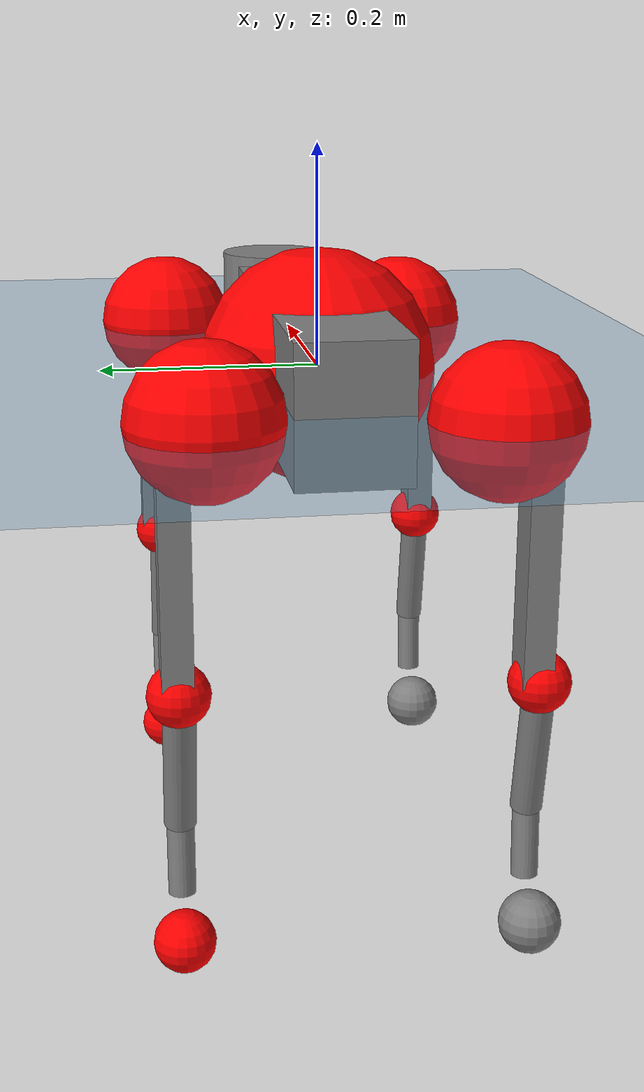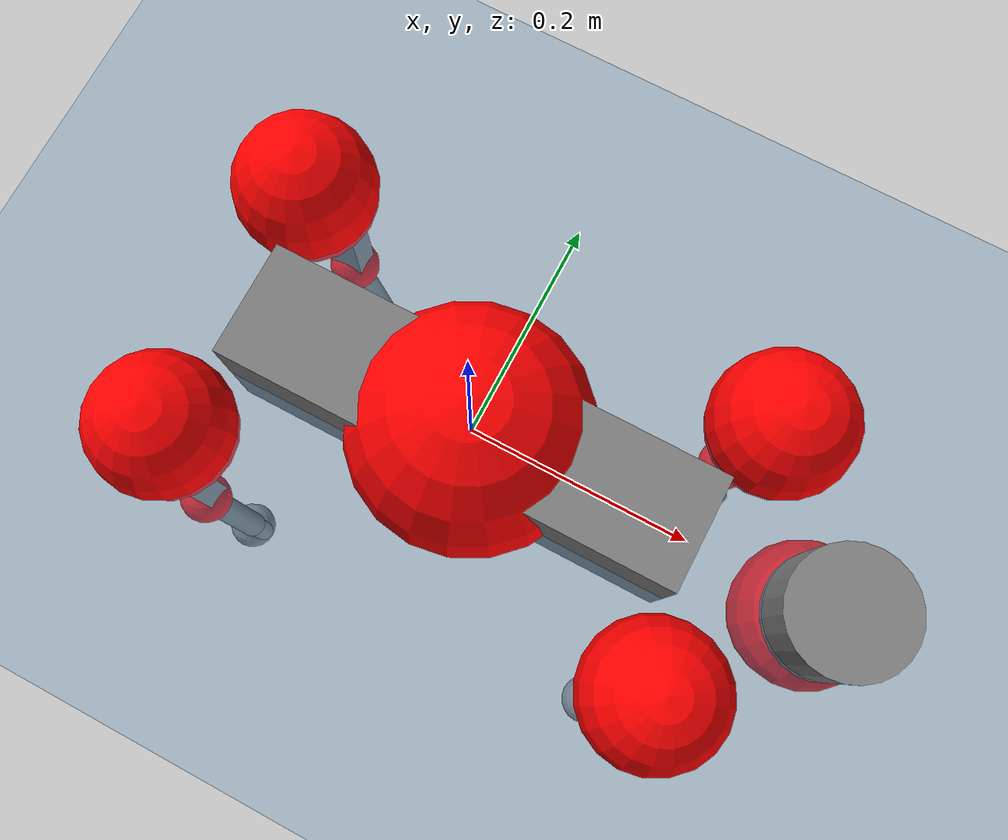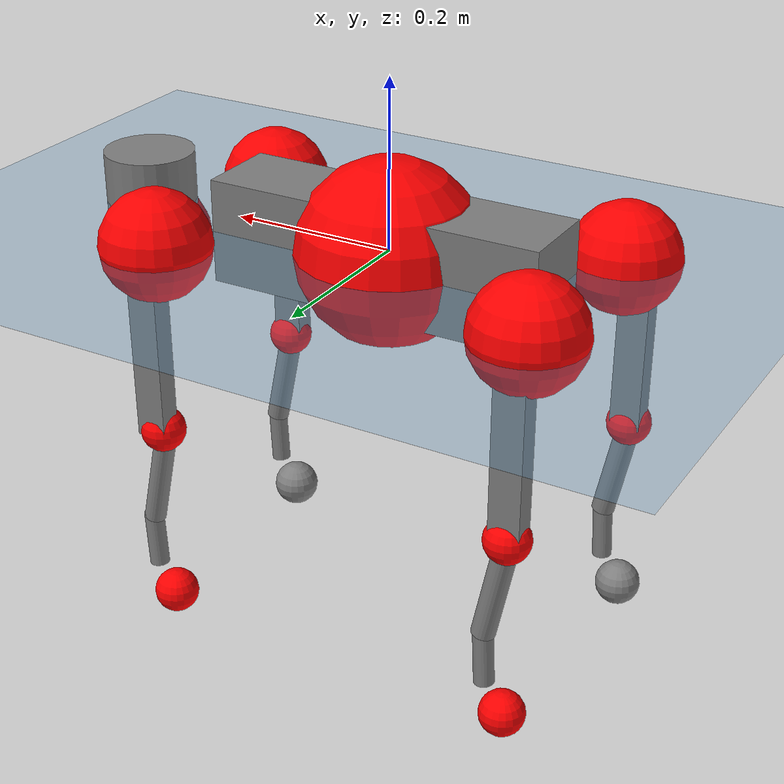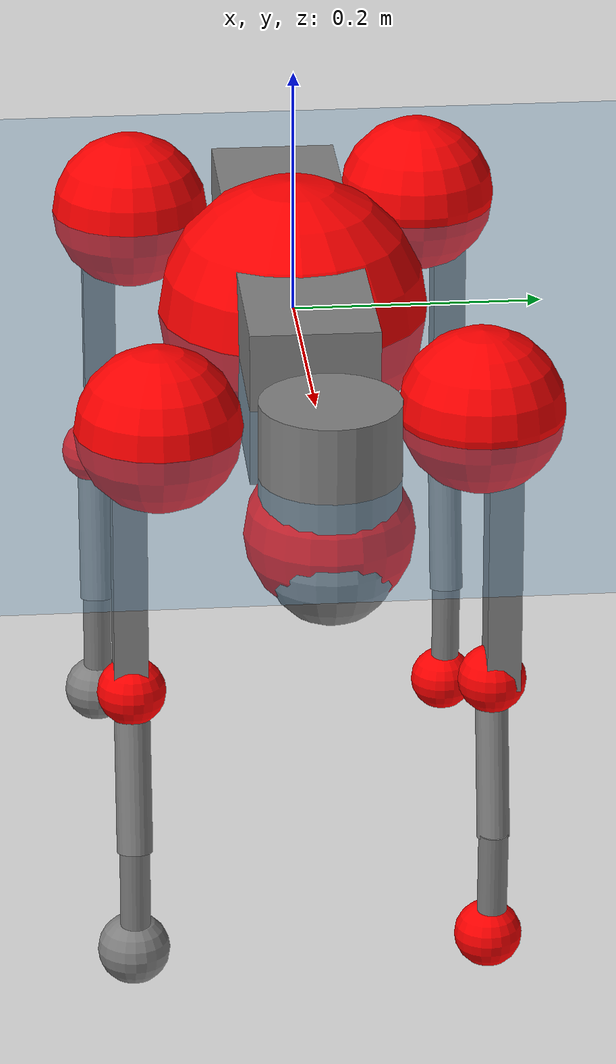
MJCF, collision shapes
<mujoco model="go2">
  <compiler angle="radian" assetdir="assets" balanceinertia="true" inertiafromgeom="false"/>

  <option timestep="0.005" density="1.2" viscosity="2e-05"/>

  <size nkey="1"/>

  <visual>
    <quality shadowsize="8192"/>
    <map shadowclip="0.5"/>
  </visual>

  <default>
    <default class="/">
      <geom contype="0" conaffinity="0" group="1" solref="-1000 -80"/>
      <site size="0.01 0.005 0.005" group="5"/>
      <general forcelimited="true" biastype="affine" gainprm="20" biasprm="0 -20 -0.5"/>
      <default class="go2">
        <joint armature="0.01" damping="0.01" frictionloss="0.2"/>
        <geom condim="1" margin="0.001"/>
        <default class="visual">
          <geom type="mesh" group="2"/>
        </default>
        <default class="collision">
          <geom group="3"/>
          <default class="foot">
            <geom size="0.022 0 0" condim="6" priority="1" friction="0.8 0.02 0.01" solimp="0.015 1 0.022"/>
          </default>
        </default>
        <default class="reward_collision_sphere">
          <geom group="5" rgba="1 0 0 1"/>
        </default>
      </default>
    </default>
  </default>

  <asset>
    <texture type="skybox" colorspace="auto" name="//unnamed_texture_0" builtin="gradient" rgb1="0.95 0.95 0.95" rgb2="0.95 0.95 0.95" width="100" height="600"/>
    <texture type="2d" colorspace="auto" name="texplane" builtin="checker" rgb1="0.345 0.575 0.748" rgb2="0.345 0.575 0.748" markrgb="1 1 1" width="512" height="512"/>
    <material name="MatPlane" class="/" texture="texplane" texuniform="true" texrepeat="2 2" specular="0.9"/>
    <material name="metal" class="/" rgba="0.9 0.95 0.95 1"/>
    <material name="black" class="/" rgba="0 0 0 1"/>
    <material name="white" class="/"/>
    <material name="gray" class="/" rgba="0.671705 0.692426 0.77427 1"/>
    <mesh name="base_0" class="/" file="base_0.obj"/>
    <mesh name="base_1" class="/" file="base_1.obj"/>
    <mesh name="base_2" class="/" file="base_2.obj"/>
    <mesh name="base_3" class="/" file="base_3.obj"/>
    <mesh name="base_4" class="/" file="base_4.obj"/>
    <mesh name="hip_0" class="/" file="hip_0.obj"/>
    <mesh name="hip_1" class="/" file="hip_1.obj"/>
    <mesh name="thigh_0" class="/" file="thigh_0.obj"/>
    <mesh name="thigh_1" class="/" file="thigh_1.obj"/>
    <mesh name="thigh_mirror_0" class="/" file="thigh_mirror_0.obj"/>
    <mesh name="thigh_mirror_1" class="/" file="thigh_mirror_1.obj"/>
    <mesh name="calf_0" class="/" file="calf_0.obj"/>
    <mesh name="calf_1" class="/" file="calf_1.obj"/>
    <mesh name="calf_mirror_0" class="/" file="calf_mirror_0.obj"/>
    <mesh name="calf_mirror_1" class="/" file="calf_mirror_1.obj"/>
    <mesh name="foot" class="/" file="foot.obj"/>
  </asset>

  <worldbody>
    <geom name="floor" class="/" size="100 100 0.125" type="plane" group="0" material="MatPlane"/>
    <light name="toplight_shadow" class="/" pos="0 0 5" dir="0.0990148 0.0990148 -0.990148" type="directional" ambient="0.04 0.04 0.04" diffuse="0.55 0.55 0.55" specular="0.12 0.12 0.12"/>
    <light name="toplight_fill" class="/" pos="0 0 5" dir="0.0990148 0.0990148 -0.990148" type="directional" castshadow="false" ambient="0.04 0.04 0.04" diffuse="0.3 0.3 0.3" specular="0.08 0.08 0.08"/>
    <body name="trunk" childclass="go2" pos="-0.000609431 -0.000299692 -0.000436161" quat="1 -0.000734327 0.000142854 0.000189168">
      <inertial pos="0.0341287 0.00668856 -0.00450292" quat="-0.00178585 0.716861 -0.00142292 0.697213" mass="8.16135" diaginertia="0.225793 0.11506 0.0366915"/>
      <joint name="//unnamed_joint_0" type="free" armature="0" damping="0" frictionloss="0"/>
      <geom name="//unnamed_geom_1" class="visual" material="black" mesh="base_0"/>
      <geom name="//unnamed_geom_2" class="visual" material="black" mesh="base_1"/>
      <geom name="//unnamed_geom_3" class="visual" material="black" mesh="base_2"/>
      <geom name="//unnamed_geom_4" class="visual" material="white" mesh="base_3"/>
      <geom name="//unnamed_geom_5" class="visual" material="gray" mesh="base_4"/>
      <geom name="trunk_1" class="collision" size="0.20453 0.0508335 0.0619788" type="box"/>
      <geom name="trunk_2" class="collision" size="0.0543674 0.0489306" pos="0.329267 0 0.0107579" type="cylinder"/>
      <geom name="trunk_3" class="collision" size="0.0511053" pos="0.33851 0 -0.0645476"/>
      <geom name="//unnamed_geom_9" class="reward_collision_sphere" size="0.108735"/>
      <geom name="//unnamed_geom_10" class="reward_collision_sphere" size="0.0652408" pos="0.323491 0 -0.0484107"/>
      <site name="imu" pos="-0.068752 0.00150455 0.0844643" size="0.0108735"/>
      <camera name="track" pos="0 -2.06185 0" quat="0.707107 0.707107 0 0" mode="trackcom"/>
      <camera name="ego_camera" pos="0.360461 0 0.0484107" quat="-0.5 -0.5 0.5 0.5"/>
      <body name="FL_hip" pos="0.228795 0.0538395 0.00572435" quat="0.999999 -0.000976863 -9.72656e-05 -0.000306944">
        <inertial pos="-0.0064538 0.00713032 -0.00209777" quat="0.494508 0.500832 0.506672 0.497908" mass="0.950071" diaginertia="0.00207031 0.00083549 0.000770947"/>
        <joint name="FL_hip_joint" pos="0 0 0" axis="0.999921 -0.00952105 -0.00823015" stiffness="0.0196782" range="-1.04461 1.02295" armature="0.0118315" damping="0" frictionloss="0.26107"/>
        <geom name="//unnamed_geom_11" class="visual" material="metal" mesh="hip_0"/>
        <geom name="//unnamed_geom_12" class="visual" material="gray" mesh="hip_1"/>
        <geom name="//unnamed_geom_13" class="collision" size="0.050018 0.0217469" pos="0 0.082474 0" quat="0.707107 0.707107 0 0" type="cylinder"/>
        <geom name="//unnamed_geom_14" class="reward_collision_sphere" size="0.0652408" pos="0 0.0721647 0"/>
        <body name="FL_thigh" pos="0.00292679 0.0898706 -0.00261621" quat="0.999993 0.00258026 0.00229491 -0.00112764">
          <inertial pos="-0.00225375 -0.022613 -0.0378044" quat="0.822189 0.0645516 -0.0116457 0.565422" mass="1.52288" diaginertia="0.0120297 0.00738151 0.00123546"/>
          <joint name="FL_thigh_joint" pos="0 0 0" axis="-0.0032982 0.999994 0.00108216" range="-1.70761 3.41273" armature="0.0106091" damping="0" frictionloss="0.248546"/>
          <geom name="//unnamed_geom_15" class="visual" material="metal" mesh="thigh_0"/>
          <geom name="//unnamed_geom_16" class="visual" material="gray" mesh="thigh_1"/>
          <geom name="//unnamed_geom_17" class="collision" size="0.115802 0.01332 0.0184849" pos="0 0 -0.114572" quat="0.707107 0 0.707107 0" type="box"/>
          <body name="FL_calf" pos="-0.0022005 -0.00715791 -0.228061" quat="1 -0.000264636 -0.000168025 0.000252659">
            <inertial pos="0.00643767 0.000626663 -0.1501" quat="0.712704 -0.00355357 -0.00760583 0.701414" mass="0.306358" diaginertia="0.00324148 0.00171488 7.62371e-05"/>
            <joint name="FL_calf_joint" pos="0 0 0" axis="0.00513518 0.999984 0.00219033" stiffness="0.0324081" range="-2.79929 -0.814367" armature="0.0107403" damping="0.0150583" frictionloss="0.230017"/>
            <geom name="//unnamed_geom_18" class="visual" material="gray" mesh="calf_0"/>
            <geom name="//unnamed_geom_19" class="visual" material="black" mesh="calf_1"/>
            <geom name="FL_calf0" class="collision" size="0.0130482 0.0652408" pos="0.00924259 0 -0.0645476" quat="0.994493 0 -0.104807 0" type="cylinder"/>
            <geom name="//unnamed_geom_21" class="collision" size="0.0119608 0.0353388" pos="0.0231065 0 -0.159217" quat="0.999688 0 0.0249974 0" type="cylinder"/>
            <geom name="//unnamed_geom_22" class="visual" pos="0 0 -0.229144" quat="1 0 0 0" material="black" mesh="foot"/>
            <geom name="FL_foot" class="foot" size="0.0249276" pos="-0.00231065 0 -0.229144"/>
            <geom name="//unnamed_geom_24" class="reward_collision_sphere" size="0.0271837"/>
            <geom name="//unnamed_geom_25" class="reward_collision_sphere" size="0.0271837" pos="-0.00231065 0 -0.229144"/>
            <site name="FL_foot" class="foot" pos="-0.00231065 0 -0.229144" size="0.0108735"/>
          </body>
        </body>
      </body>
      <body name="FR_hip" pos="0.231558 -0.050511 -0.000427108" quat="1 5.60188e-05 -0.000669126 0.000235287">
        <inertial pos="-0.00268326 0.00803391 0.00372528" quat="0.474474 0.496861 0.535718 0.490928" mass="0.866094" diaginertia="0.00198576 0.000639717 0.000749791"/>
        <joint name="FR_hip_joint" pos="0 0 0" axis="0.999567 -0.026956 0.0117663" stiffness="0.000186684" range="-1.01452 1.04135" armature="0.0107001" damping="0.0327092" frictionloss="0.21014"/>
        <geom name="//unnamed_geom_26" class="visual" pos="0 -3.90877e-10 -1.67655e-08" quat="4.63268e-05 1 0 0" material="metal" mesh="hip_0"/>
        <geom name="//unnamed_geom_27" class="visual" pos="0 -6.33658e-10 4.14676e-08" quat="4.63268e-05 1 0 0" material="gray" mesh="hip_1"/>
        <geom name="//unnamed_geom_28" class="collision" size="0.050018 0.0217469" pos="0 -0.082474 0" quat="0.707107 0.707107 0 0" type="cylinder"/>
        <geom name="//unnamed_geom_29" class="reward_collision_sphere" size="0.0652408" pos="0 -0.0721647 0"/>
        <body name="FR_thigh" pos="-0.00266864 -0.0956161 0.00660734" quat="0.999995 -0.0015082 -0.00173074 -0.00215722">
          <inertial pos="-0.0123661 0.0230003 -0.0322565" quat="0.546878 -0.0213098 0.0994467 0.831012" mass="1.35618" diaginertia="0.0125789 0.00720055 0.00112185"/>
          <joint name="FR_thigh_joint" pos="0 0 0" axis="-0.00871253 -0.999953 0.00421265" range="-3.49948 1.54389" armature="0.0127562" damping="0" frictionloss="0.204125"/>
          <geom name="//unnamed_geom_30" class="visual" material="metal" mesh="thigh_mirror_0"/>
          <geom name="//unnamed_geom_31" class="visual" material="gray" mesh="thigh_mirror_1"/>
          <geom name="//unnamed_geom_32" class="collision" size="0.115802 0.01332 0.0184849" pos="0 0 -0.114572" quat="0.707107 0 0.707107 0" type="box"/>
          <body name="FR_calf" pos="0.00290527 0.000700889 -0.228162" quat="0.999999 -0.000420487 0.000207007 0.00138768">
            <inertial pos="0.0125532 0.000855459 -0.153" quat="0.677391 0.0023014 0.0259992 0.73516" mass="0.278072" diaginertia="0.00281678 0.00162071 7.15858e-05"/>
            <joint name="FR_calf_joint" pos="0 0 0" axis="0.01824 -0.999708 0.0158513" stiffness="0.0389813" range="1.00043 2.78615" armature="0.00752944" damping="0" frictionloss="0.20027"/>
            <geom name="//unnamed_geom_33" class="visual" material="gray" mesh="calf_mirror_0"/>
            <geom name="//unnamed_geom_34" class="visual" material="black" mesh="calf_mirror_1"/>
            <geom name="FR_calf0" class="collision" size="0.0141355 0.0652408" pos="0.0115532 0 -0.0645476" quat="0.995004 0 -0.0998334 0" type="cylinder"/>
            <geom name="//unnamed_geom_36" class="collision" size="0.0119608 0.0353388" pos="0.0231065 0 -0.159217" quat="0.999688 0 0.0249974 0" type="cylinder"/>
            <geom name="//unnamed_geom_37" class="visual" pos="0 0 -0.229144" quat="1 0 0 0" material="black" mesh="foot"/>
            <geom name="FR_foot" class="foot" size="0.028814" pos="-0.00231065 0 -0.229144"/>
            <geom name="//unnamed_geom_39" class="reward_collision_sphere" size="0.0271837"/>
            <geom name="//unnamed_geom_40" class="reward_collision_sphere" size="0.0271837" pos="-0.00231065 0 -0.229144"/>
            <site name="FR_foot" class="foot" pos="-0.00231065 0 -0.229144" size="0.0108735"/>
          </body>
        </body>
      </body>
      <body name="RL_hip" pos="-0.230356 0.0520713 0.00703775" quat="0.999999 0.00124612 0.000335346 -0.000123963">
        <inertial pos="0.00710227 -0.00214873 0.00880999" quat="0.526557 0.501844 0.485825 0.484628" mass="0.786072" diaginertia="0.00142784 0.00061471 0.000640257"/>
        <joint name="RL_hip_joint" pos="0 0 0" axis="-0.999605 -0.0280708 -0.00167898" stiffness="0.00793801" range="-1.06494 1.03709" armature="0.00947841" damping="0.0454944" frictionloss="0.222385"/>
        <geom name="//unnamed_geom_41" class="visual" pos="-6.92833e-10 0 -1.35811e-07" quat="4.63268e-05 0 1 0" material="metal" mesh="hip_0"/>
        <geom name="//unnamed_geom_42" class="visual" pos="-1.12316e-09 0 -1.20445e-07" quat="4.63268e-05 0 1 0" material="gray" mesh="hip_1"/>
        <geom name="//unnamed_geom_43" class="collision" size="0.050018 0.0217469" pos="0 0.082474 0" quat="0.707107 0.707107 0 0" type="cylinder"/>
        <geom name="//unnamed_geom_44" class="reward_collision_sphere" size="0.0652408" pos="0 0.0721647 0"/>
        <body name="RL_thigh" pos="-0.00017913 0.0992634 -0.00211176" quat="1 0.000341924 -0.000154448 -6.56368e-06">
          <inertial pos="0.00541901 -0.0232867 -0.0266199" quat="0.828134 0.083421 -0.0167994 0.554033" mass="1.58435" diaginertia="0.0144131 0.00678439 0.0013248"/>
          <joint name="RL_thigh_joint" pos="0 0 0" axis="0.0113007 0.999645 -0.0241456" range="-0.478809 4.61638" armature="0.0115491" damping="0.0335927" frictionloss="0.224249"/>
          <geom name="//unnamed_geom_45" class="visual" material="metal" mesh="thigh_0"/>
          <geom name="//unnamed_geom_46" class="visual" material="gray" mesh="thigh_1"/>
          <geom name="//unnamed_geom_47" class="collision" size="0.115802 0.01332 0.0184849" pos="0 0 -0.114572" quat="0.707107 0 0.707107 0" type="box"/>
          <body name="RL_calf" pos="0.00127831 -0.00154171 -0.227839" quat="1 0.000291175 0.000550416 0.000235062">
            <inertial pos="0.00500868 -0.00759038 -0.151989" quat="0.718538 -0.0108818 0.000987545 0.695402" mass="0.274067" diaginertia="0.00282534 0.00136913 6.71369e-05"/>
            <joint name="RL_calf_joint" pos="0 0 0" axis="0.006594 0.999888 0.0134337" range="-2.85444 -0.750824" armature="0.00667211" damping="0" frictionloss="0.28343"/>
            <geom name="//unnamed_geom_48" class="visual" material="gray" mesh="calf_0"/>
            <geom name="//unnamed_geom_49" class="visual" material="black" mesh="calf_1"/>
            <geom name="RL_calf0" class="collision" size="0.0141355 0.0652408" pos="0.0115532 0 -0.0645476" quat="0.995004 0 -0.0998334 0" type="cylinder"/>
            <geom name="//unnamed_geom_51" class="collision" size="0.0119608 0.0353388" pos="0.0231065 0 -0.159217" quat="0.999688 0 0.0249974 0" type="cylinder"/>
            <geom name="//unnamed_geom_52" class="visual" pos="0 0 -0.229144" quat="1 0 0 0" material="black" mesh="foot"/>
            <geom name="RL_foot" class="foot" size="0.0219612" pos="-0.00231065 0 -0.229144"/>
            <geom name="//unnamed_geom_54" class="reward_collision_sphere" size="0.0271837"/>
            <geom name="//unnamed_geom_55" class="reward_collision_sphere" size="0.0271837" pos="-0.00231065 0 -0.229144"/>
            <site name="RL_foot" class="foot" pos="-0.00231065 0 -0.229144" size="0.0108735"/>
          </body>
        </body>
      </body>
      <body name="RR_hip" pos="-0.233218 -0.046081 -0.00120541" quat="0.999999 -0.00053322 0.000688297 -0.000756971">
        <inertial pos="0.00942003 -0.00453357 0.00827231" quat="0.504286 0.530381 0.460924 0.501937" mass="0.900185" diaginertia="0.0020228 0.000786546 0.000778725"/>
        <joint name="RR_hip_joint" pos="0 0 0" axis="-0.999269 -0.0372668 -0.00846806" stiffness="0.00867348" range="-0.904582 0.999291" armature="0.0114543" damping="0.0209428" frictionloss="0.211771"/>
        <geom name="//unnamed_geom_56" class="visual" pos="6.88526e-10 -3.90877e-10 -1.19046e-07" quat="2.14617e-09 4.63268e-05 4.63268e-05 -1" material="metal" mesh="hip_0"/>
        <geom name="//unnamed_geom_57" class="visual" pos="1.13382e-09 -6.33658e-10 -1.61913e-07" quat="2.14617e-09 4.63268e-05 4.63268e-05 -1" material="gray" mesh="hip_1"/>
        <geom name="//unnamed_geom_58" class="collision" size="0.050018 0.0217469" pos="0 -0.082474 0" quat="0.707107 0.707107 0 0" type="cylinder"/>
        <geom name="//unnamed_geom_59" class="reward_collision_sphere" size="0.0652408" pos="0 -0.0721647 0"/>
        <body name="RR_thigh" pos="-0.0086931 -0.0996302 0.00717527" quat="0.999995 0.0012785 -0.00141767 -0.00258094">
          <inertial pos="-0.00296999 0.0199507 -0.0343193" quat="0.552921 -0.0209852 0.084371 0.828686" mass="1.6443" diaginertia="0.0136121 0.00692351 0.00129189"/>
          <joint name="RR_thigh_joint" pos="0 0 0" axis="0.00339275 -0.999994 -0.00102743" range="-4.60114 0.522487" armature="0.0100706" damping="0" frictionloss="0.214407"/>
          <geom name="//unnamed_geom_60" class="visual" material="metal" mesh="thigh_mirror_0"/>
          <geom name="//unnamed_geom_61" class="visual" material="gray" mesh="thigh_mirror_1"/>
          <geom name="//unnamed_geom_62" class="collision" size="0.115802 0.01332 0.0184849" pos="0 0 -0.114572" quat="0.707107 0 0.707107 0" type="box"/>
          <body name="RR_calf" pos="0.00090326 -0.00624876 -0.231167" quat="0.999992 -0.00175039 -0.000109508 -0.00354099">
            <inertial pos="0.00141454 0.00222673 -0.151732" quat="0.713737 0.0158845 -0.00622446 0.700206" mass="0.298916" diaginertia="0.0030855 0.00170008 7.81537e-05"/>
            <joint name="RR_calf_joint" pos="0 0 0" axis="0.00101067 -0.999931 -0.011737" stiffness="0.00270874" range="0.831521 2.57586" armature="0.0106256" damping="0" frictionloss="0.201009"/>
            <geom name="//unnamed_geom_63" class="visual" material="gray" mesh="calf_mirror_0"/>
            <geom name="//unnamed_geom_64" class="visual" material="black" mesh="calf_mirror_1"/>
            <geom name="RR_calf0" class="collision" size="0.0141355 0.0652408" pos="0.0115532 0 -0.0645476" quat="0.995004 0 -0.0998334 0" type="cylinder"/>
            <geom name="//unnamed_geom_66" class="collision" size="0.0119608 0.0353388" pos="0.0231065 0 -0.159217" quat="0.999688 0 0.0249974 0" type="cylinder"/>
            <geom name="//unnamed_geom_67" class="visual" pos="0 0 -0.229144" quat="1 0 0 0" material="black" mesh="foot"/>
            <geom name="RR_foot" class="foot" size="0.0278675" pos="-0.00231065 0 -0.229144"/>
            <geom name="//unnamed_geom_69" class="reward_collision_sphere" size="0.0271837"/>
            <geom name="//unnamed_geom_70" class="reward_collision_sphere" size="0.0271837" pos="-0.00231065 0 -0.229144"/>
            <site name="RR_foot" class="foot" pos="-0.00231065 0 -0.229144" size="0.0108735"/>
          </body>
        </body>
      </body>
    </body>
  </worldbody>

  <contact>
    <pair class="/" geom1="floor" geom2="FL_foot" name="//unnamed_contact_0"/>
    <pair class="/" geom1="floor" geom2="FR_foot" name="//unnamed_contact_1"/>
    <pair class="/" geom1="floor" geom2="RL_foot" name="//unnamed_contact_2"/>
    <pair class="/" geom1="floor" geom2="RR_foot" name="//unnamed_contact_3"/>
  </contact>

  <actuator>
    <general name="FL_hip" class="/" joint="FL_hip_joint" forcerange="-30.9781 30.9781" gainprm="23.3251" biasprm="0 -23.3251 -0.581702"/>
    <general name="FL_thigh" class="/" joint="FL_thigh_joint" forcerange="-33.8783 33.8783" gainprm="23.3251" biasprm="0 -23.3251 -0.581702"/>
    <general name="FL_calf" class="/" joint="FL_calf_joint" forcerange="-49.9996 49.9996" gainprm="23.3251" biasprm="0 -23.3251 -0.581702"/>
    <general name="FR_hip" class="/" joint="FR_hip_joint" forcerange="-27.234 27.234" gainprm="23.3251" biasprm="0 -23.3251 -0.581702"/>
    <general name="FR_thigh" class="/" joint="FR_thigh_joint" forcerange="-21.4561 21.4561" gainprm="23.3251" biasprm="0 -23.3251 -0.581702"/>
    <general name="FR_calf" class="/" joint="FR_calf_joint" forcerange="-46.9314 46.9314" gainprm="23.3251" biasprm="0 -23.3251 -0.581702"/>
    <general name="RL_hip" class="/" joint="RL_hip_joint" forcerange="-25.4419 25.4419" gainprm="23.3251" biasprm="0 -23.3251 -0.581702"/>
    <general name="RL_thigh" class="/" joint="RL_thigh_joint" forcerange="-30.4689 30.4689" gainprm="23.3251" biasprm="0 -23.3251 -0.581702"/>
    <general name="RL_calf" class="/" joint="RL_calf_joint" forcerange="-48.2938 48.2938" gainprm="23.3251" biasprm="0 -23.3251 -0.581702"/>
    <general name="RR_hip" class="/" joint="RR_hip_joint" forcerange="-24.0852 24.0852" gainprm="23.3251" biasprm="0 -23.3251 -0.581702"/>
    <general name="RR_thigh" class="/" joint="RR_thigh_joint" forcerange="-19.3871 19.3871" gainprm="23.3251" biasprm="0 -23.3251 -0.581702"/>
    <general name="RR_calf" class="/" joint="RR_calf_joint" forcerange="-51.5337 51.5337" gainprm="23.3251" biasprm="0 -23.3251 -0.581702"/>
  </actuator>

  <sensor>
    <gyro site="imu" name="imu_angular_velocity"/>
    <velocimeter site="imu" name="imu_linear_velocity"/>
    <framelinvel objtype="site" objname="FL_foot" name="FL_foot_global_linear_velocity"/>
    <framelinvel objtype="site" objname="FR_foot" name="FR_foot_global_linear_velocity"/>
    <framelinvel objtype="site" objname="RL_foot" name="RL_foot_global_linear_velocity"/>
    <framelinvel objtype="site" objname="RR_foot" name="RR_foot_global_linear_velocity"/>
  </sensor>

  <keyframe>
    <key name="home" qpos="0 0 0.325 1 0 0 0 0.1 0.8 -1.5 -0.1 -0.8 1.5 -0.1 0.8 -1.5 0.1 -0.8 1.5"/>
  </keyframe>
</mujoco>
